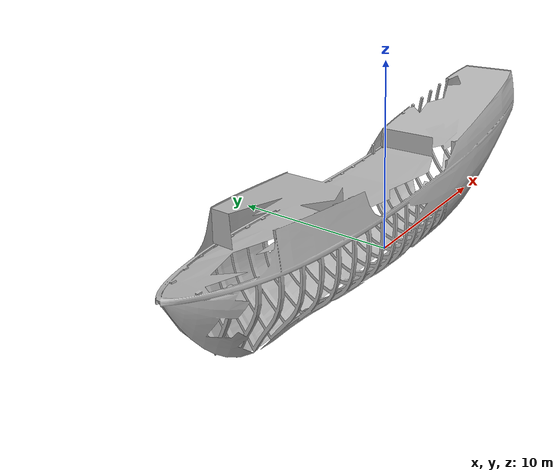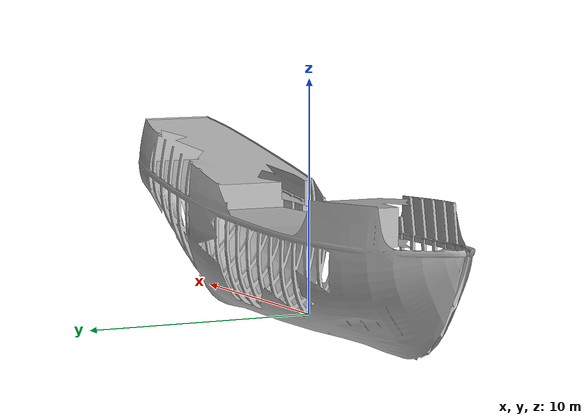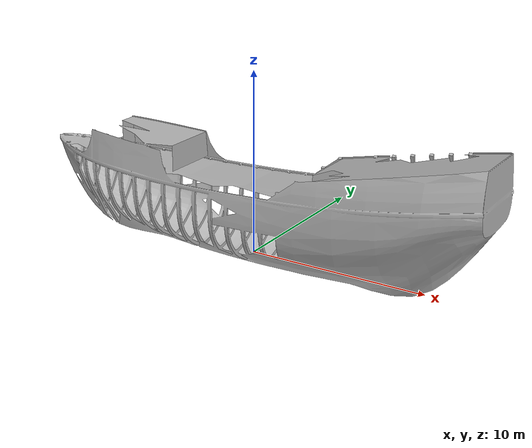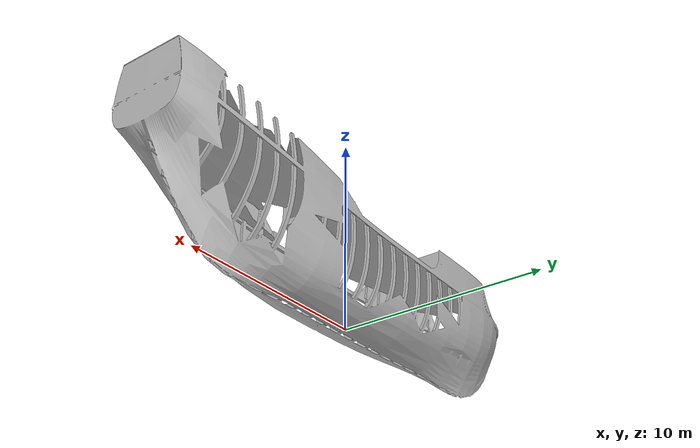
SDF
<?xml version="1.0"?>
<sdf version="1.4">
    <model name="shipwreck">
        <pose>0 0 0 0 0 0</pose>
        <static>true</static>
        <link name="shipwreck_body">
            <visual name="visual">
                <geometry>
                    <mesh>
                        <uri>model://shipwreck/visual.osgb</uri>
                    </mesh>
                </geometry>
            </visual>
            <collision name="collision">
                <geometry>
                    <mesh>
                        <uri>model://shipwreck/collision.stl</uri>
                    </mesh>
                </geometry>
            </collision>
            <inertial>
                <pose>0 0 -1 0 0 0</pose>
                <inertia>
                    <ixx>0.0</ixx>
                    <ixy>0</ixy>
                    <ixz>0.0</ixz>
                    <iyy>0.0</iyy>
                    <iyz>0</iyz>
                    <izz>0.0</izz>
                </inertia>
                <mass>1.0</mass>
            </inertial>
        </link>
    </model>
</sdf>
